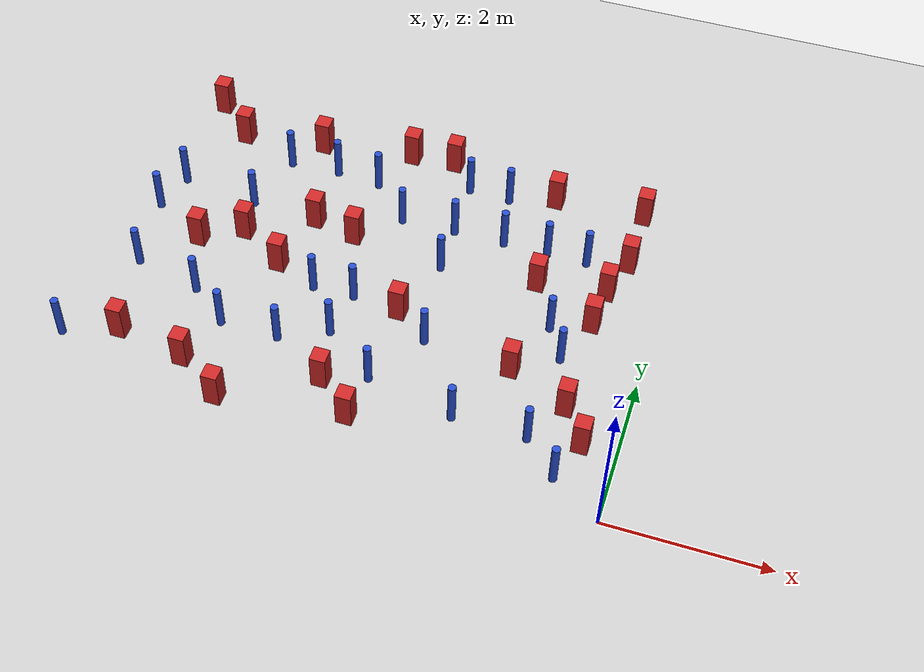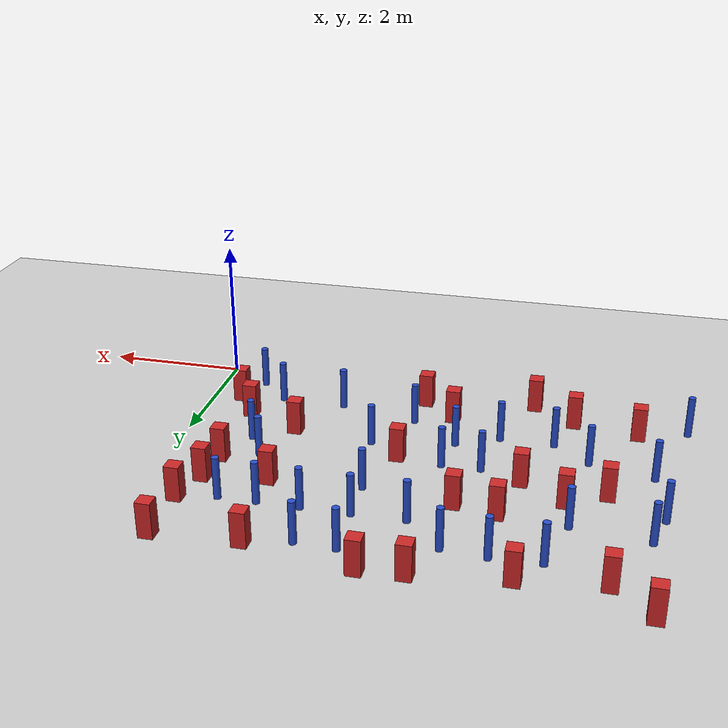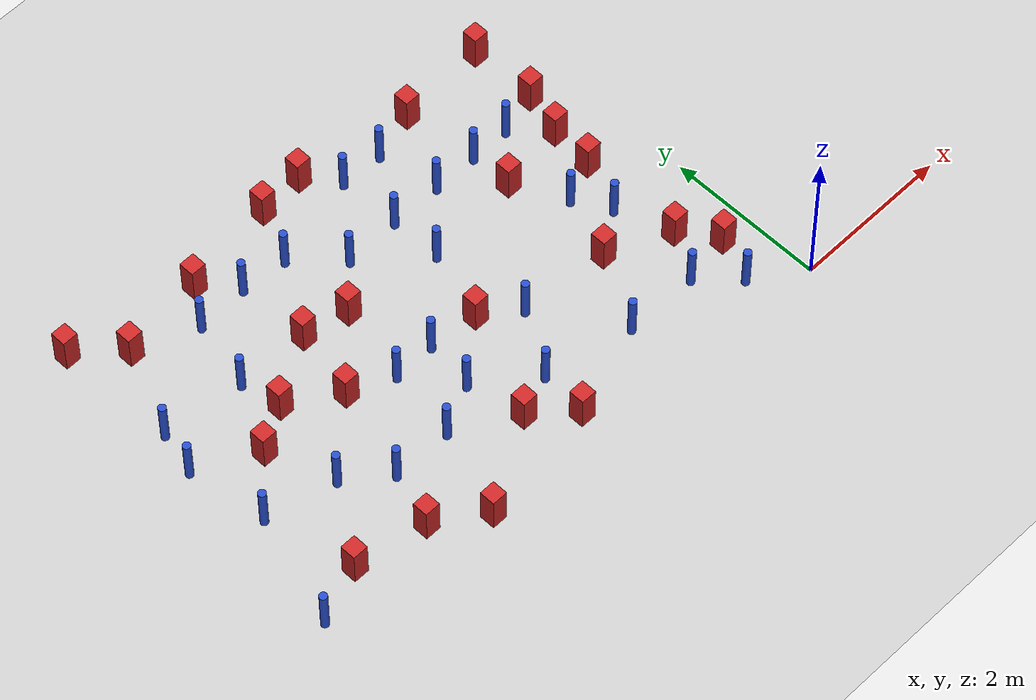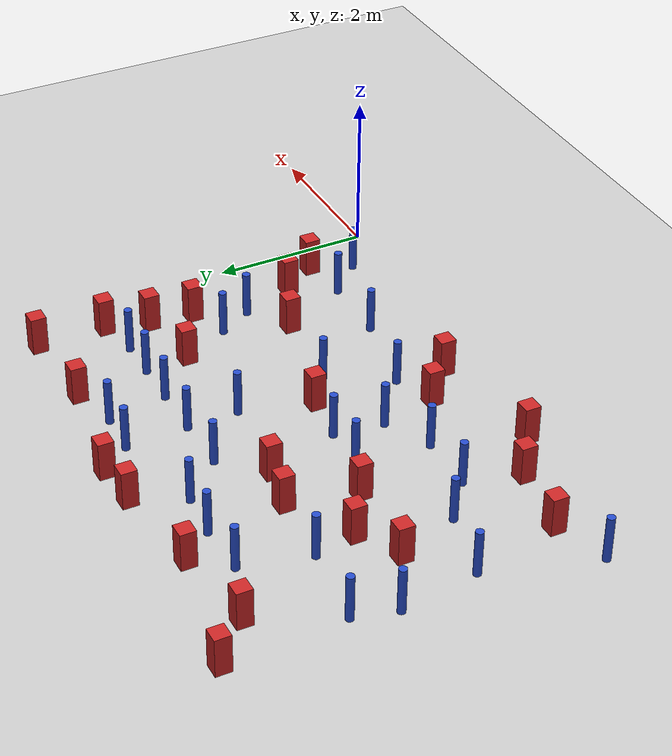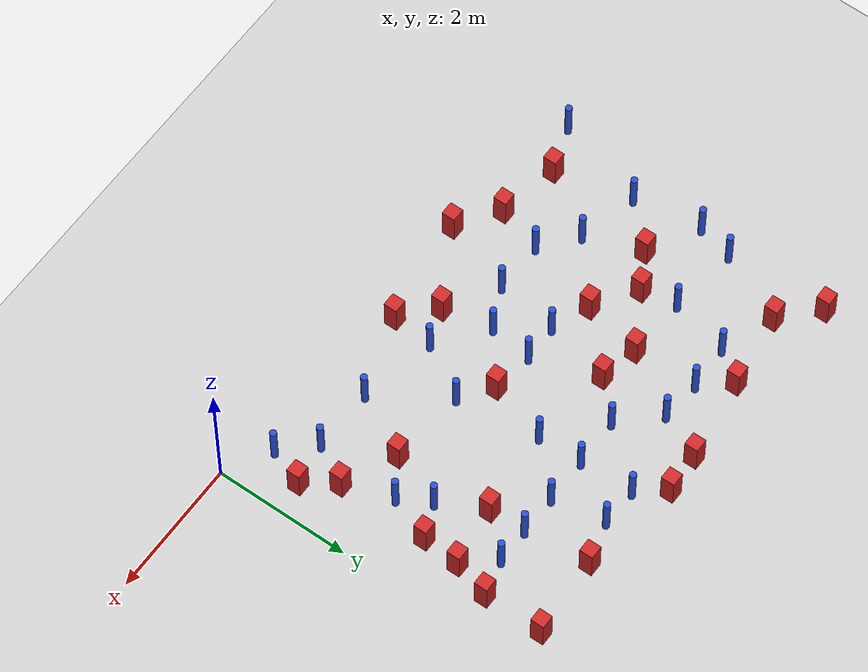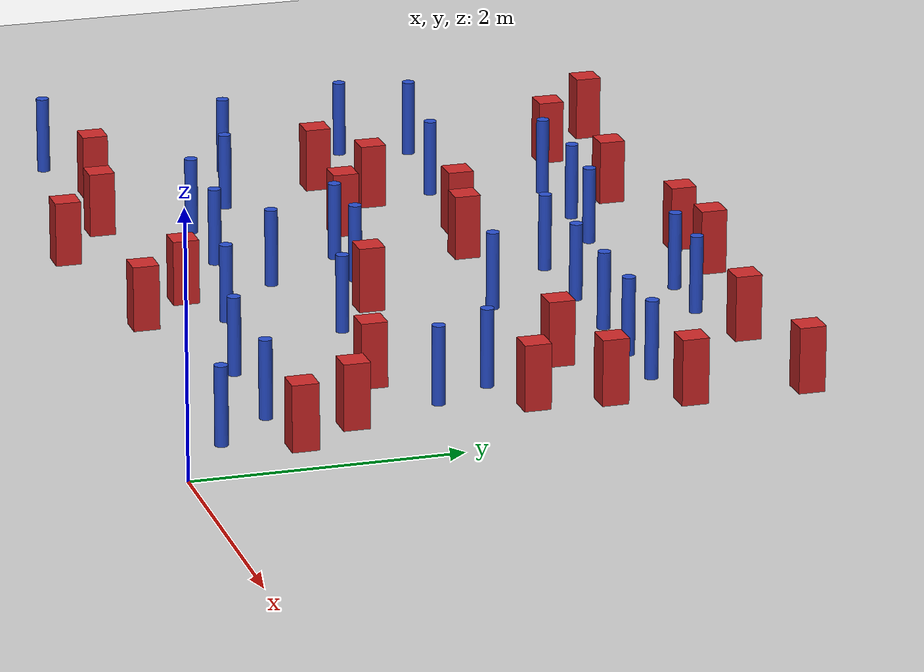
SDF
<sdf version="1.6">
 <world name="default">
  <model name="ground_plane">
   <static>1</static>
   <link name="link">
    <collision name="collision">
     <geometry><plane><normal>0 0 1</normal><size>100 100</size></plane></geometry>
     <surface><friction><ode><mu>100</mu><mu2>50</mu2></ode></friction></surface>
    </collision>
    <visual name="visual">
     <cast_shadows>0</cast_shadows>
     <geometry><plane><normal>0 0 1</normal><size>100 100</size></plane></geometry>
     <material>
      <ambient>1.0 1.0 1.0 1.0</ambient>
      <diffuse>0.8 0.8 0.8 1.0</diffuse>
      <specular>0.01 0.01 0.01 1.000000</specular>
     </material>
    </visual>
   </link>
  </model>
  <model name="square_post_obstacle5">
   <static>true</static>
   <pose>-5.42175333272 2.87260005958 1.91545236811e-07 -7.35059704564e-06 1.12565212e-07 2.39332434364e-05</pose>
   <link name="link">
    <pose>0 0 0.25 0 -0 0</pose>
    <inertial>
     <mass>100</mass>
     <inertia>
      <ixx>0.166667</ixx>
      <ixy>0</ixy>
      <ixz>0</ixz>
      <iyy>0.166667</iyy>
      <iyz>0</iyz>
      <izz>0.166667</izz>
     </inertia>
    </inertial>
    <collision name="collision"><geometry><box><size>.2 .2 .5</size></box></geometry></collision>
    <visual name="visual">
     <geometry><box><size>.2 .2 .5</size></box></geometry>
     <material>
      <script><name>Gazebo/Red</name><uri>file://media/materials/scripts/gazebo.material</uri></script>
     </material>
    </visual>
   </link>
  </model>
  <model name="pole_obstacle12">
   <static>true</static>
   <pose>-4.05530180549 4.23103096723 7.38925637345e-09 -8.47170692796e-08 1.24976764786e-08 -1.74513093032e-07</pose>
   <link name="link">
    <pose>0 0 0.3 0 -0 0</pose>
    <inertial>
     <mass>1</mass>
     <inertia><ixx>0.145833</ixx><ixy>0</ixy><ixz>0</ixz><iyy>0.145833</iyy><iyz>0</iyz><izz>0.125</izz></inertia>
    </inertial>
    <collision name="collision">
     <geometry><cylinder><radius>0.05</radius><length>.6</length></cylinder></geometry>
    </collision>
    <visual name="visual">
     <geometry><cylinder><radius>0.05</radius><length>.6</length></cylinder></geometry>
     <material>
      <script><name>Gazebo/Blue</name><uri>file://media/materials/scripts/gazebo.material</uri></script>
     </material>
    </visual>
   </link>
  </model>
  <model name="pole_obstacle24">
   <static>true</static>
   <pose>-1.06037930642 3.72873706367 7.38925637345e-09 -8.47170692799e-08 1.24976765053e-08 -1.74513093017e-07</pose>
   <link name="link">
    <pose>0 0 0.3 0 -0 0</pose>
    <inertial>
     <mass>1</mass>
     <inertia><ixx>0.145833</ixx><ixy>0</ixy><ixz>0</ixz><iyy>0.145833</iyy><iyz>0</iyz><izz>0.125</izz></inertia>
    </inertial>
    <collision name="collision">
     <geometry><cylinder><radius>0.05</radius><length>.6</length></cylinder></geometry>
    </collision>
    <visual name="visual">
     <geometry><cylinder><radius>0.05</radius><length>.6</length></cylinder></geometry>
     <material>
      <script><name>Gazebo/Blue</name><uri>file://media/materials/scripts/gazebo.material</uri></script>
     </material>
    </visual>
   </link>
  </model>
  <model name="square_post_obstacle22">
   <static>true</static>
   <pose>-0.539328803882 3.85172684881 1.91545236811e-07 -7.35059704564e-06 1.12565212e-07 2.39332434364e-05</pose>
   <link name="link">
    <pose>0 0 0.25 0 -0 0</pose>
    <inertial>
     <mass>100</mass>
     <inertia>
      <ixx>0.166667</ixx>
      <ixy>0</ixy>
      <ixz>0</ixz>
      <iyy>0.166667</iyy>
      <iyz>0</iyz>
      <izz>0.166667</izz>
     </inertia>
    </inertial>
    <collision name="collision"><geometry><box><size>.2 .2 .5</size></box></geometry></collision>
    <visual name="visual">
     <geometry><box><size>.2 .2 .5</size></box></geometry>
     <material>
      <script><name>Gazebo/Red</name><uri>file://media/materials/scripts/gazebo.material</uri></script>
     </material>
    </visual>
   </link>
  </model>
  <model name="pole_obstacle33">
   <static>true</static>
   <pose>-5.1374661536 1.35356909566 7.38925637345e-09 -8.471706928e-08 1.24976765134e-08 -1.74513093015e-07</pose>
   <link name="link">
    <pose>0 0 0.3 0 -0 0</pose>
    <inertial>
     <mass>1</mass>
     <inertia><ixx>0.145833</ixx><ixy>0</ixy><ixz>0</ixz><iyy>0.145833</iyy><iyz>0</iyz><izz>0.125</izz></inertia>
    </inertial>
    <collision name="collision">
     <geometry><cylinder><radius>0.05</radius><length>.6</length></cylinder></geometry>
    </collision>
    <visual name="visual">
     <geometry><cylinder><radius>0.05</radius><length>.6</length></cylinder></geometry>
     <material>
      <script><name>Gazebo/Blue</name><uri>file://media/materials/scripts/gazebo.material</uri></script>
     </material>
    </visual>
   </link>
  </model>
  <model name="pole_obstacle35">
   <static>true</static>
   <pose>-6.5291552342 1.97306248647 7.38925637345e-09 -8.471706928e-08 1.24976765177e-08 -1.74513093012e-07</pose>
   <link name="link">
    <pose>0 0 0.3 0 -0 0</pose>
    <inertial>
     <mass>1</mass>
     <inertia><ixx>0.145833</ixx><ixy>0</ixy><ixz>0</ixz><iyy>0.145833</iyy><iyz>0</iyz><izz>0.125</izz></inertia>
    </inertial>
    <collision name="collision">
     <geometry><cylinder><radius>0.05</radius><length>.6</length></cylinder></geometry>
    </collision>
    <visual name="visual">
     <geometry><cylinder><radius>0.05</radius><length>.6</length></cylinder></geometry>
     <material>
      <script><name>Gazebo/Blue</name><uri>file://media/materials/scripts/gazebo.material</uri></script>
     </material>
    </visual>
   </link>
  </model>
  <model name="square_post_obstacle32">
   <static>true</static>
   <pose>-4.61530927945 3.34257835323 1.91545236811e-07 -7.35059704564e-06 1.12565212e-07 2.39332434364e-05</pose>
   <link name="link">
    <pose>0 0 0.25 0 -0 0</pose>
    <inertial>
     <mass>100</mass>
     <inertia>
      <ixx>0.166667</ixx>
      <ixy>0</ixy>
      <ixz>0</ixz>
      <iyy>0.166667</iyy>
      <iyz>0</iyz>
      <izz>0.166667</izz>
     </inertia>
    </inertial>
    <collision name="collision"><geometry><box><size>.2 .2 .5</size></box></geometry></collision>
    <visual name="visual">
     <geometry><box><size>.2 .2 .5</size></box></geometry>
     <material>
      <script><name>Gazebo/Red</name><uri>file://media/materials/scripts/gazebo.material</uri></script>
     </material>
    </visual>
   </link>
  </model>
  <model name="square_post_obstacle35">
   <static>true</static>
   <pose>-6.26456889306 0.843740738782 1.91545236811e-07 -7.35059704564e-06 1.12565212e-07 2.39332434364e-05</pose>
   <link name="link">
    <pose>0 0 0.25 0 -0 0</pose>
    <inertial>
     <mass>100</mass>
     <inertia>
      <ixx>0.166667</ixx>
      <ixy>0</ixy>
      <ixz>0</ixz>
      <iyy>0.166667</iyy>
      <iyz>0</iyz>
      <izz>0.166667</izz>
     </inertia>
    </inertial>
    <collision name="collision"><geometry><box><size>.2 .2 .5</size></box></geometry></collision>
    <visual name="visual">
     <geometry><box><size>.2 .2 .5</size></box></geometry>
     <material>
      <script><name>Gazebo/Red</name><uri>file://media/materials/scripts/gazebo.material</uri></script>
     </material>
    </visual>
   </link>
  </model>
  <model name="pole_obstacle46">
   <static>true</static>
   <pose>-2.81803144075 3.07217983577 7.38925637345e-09 -8.47170692798e-08 1.24976764939e-08 -1.74513093025e-07</pose>
   <link name="link">
    <pose>0 0 0.3 0 -0 0</pose>
    <inertial>
     <mass>1</mass>
     <inertia><ixx>0.145833</ixx><ixy>0</ixy><ixz>0</ixz><iyy>0.145833</iyy><iyz>0</iyz><izz>0.125</izz></inertia>
    </inertial>
    <collision name="collision">
     <geometry><cylinder><radius>0.05</radius><length>.6</length></cylinder></geometry>
    </collision>
    <visual name="visual">
     <geometry><cylinder><radius>0.05</radius><length>.6</length></cylinder></geometry>
     <material>
      <script><name>Gazebo/Blue</name><uri>file://media/materials/scripts/gazebo.material</uri></script>
     </material>
    </visual>
   </link>
  </model>
  <model name="pole_obstacle50">
   <static>true</static>
   <pose>-1.05528966167 0.841819088689 7.38925637345e-09 -8.47170692799e-08 1.24976765075e-08 -1.74513093017e-07</pose>
   <link name="link">
    <pose>0 0 0.3 0 -0 0</pose>
    <inertial>
     <mass>1</mass>
     <inertia><ixx>0.145833</ixx><ixy>0</ixy><ixz>0</ixz><iyy>0.145833</iyy><iyz>0</iyz><izz>0.125</izz></inertia>
    </inertial>
    <collision name="collision">
     <geometry><cylinder><radius>0.05</radius><length>.6</length></cylinder></geometry>
    </collision>
    <visual name="visual">
     <geometry><cylinder><radius>0.05</radius><length>.6</length></cylinder></geometry>
     <material>
      <script><name>Gazebo/Blue</name><uri>file://media/materials/scripts/gazebo.material</uri></script>
     </material>
    </visual>
   </link>
  </model>
  <model name="pole_obstacle54">
   <static>true</static>
   <pose>-0.983637337728 2.0998711888 7.38925637345e-09 -8.47170692799e-08 1.24976765063e-08 -1.74513093018e-07</pose>
   <link name="link">
    <pose>0 0 0.3 0 -0 0</pose>
    <inertial>
     <mass>1</mass>
     <inertia><ixx>0.145833</ixx><ixy>0</ixy><ixz>0</ixz><iyy>0.145833</iyy><iyz>0</iyz><izz>0.125</izz></inertia>
    </inertial>
    <collision name="collision">
     <geometry><cylinder><radius>0.05</radius><length>.6</length></cylinder></geometry>
    </collision>
    <visual name="visual">
     <geometry><cylinder><radius>0.05</radius><length>.6</length></cylinder></geometry>
     <material>
      <script><name>Gazebo/Blue</name><uri>file://media/materials/scripts/gazebo.material</uri></script>
     </material>
    </visual>
   </link>
  </model>
  <model name="square_post_obstacle42">
   <static>true</static>
   <pose>-6.08776277516 4.54528650982 1.91545236811e-07 -7.35059704564e-06 1.12565212e-07 2.39332434364e-05</pose>
   <link name="link">
    <pose>0 0 0.25 0 -0 0</pose>
    <inertial>
     <mass>100</mass>
     <inertia>
      <ixx>0.166667</ixx>
      <ixy>0</ixy>
      <ixz>0</ixz>
      <iyy>0.166667</iyy>
      <iyz>0</iyz>
      <izz>0.166667</izz>
     </inertia>
    </inertial>
    <collision name="collision"><geometry><box><size>.2 .2 .5</size></box></geometry></collision>
    <visual name="visual">
     <geometry><box><size>.2 .2 .5</size></box></geometry>
     <material>
      <script><name>Gazebo/Red</name><uri>file://media/materials/scripts/gazebo.material</uri></script>
     </material>
    </visual>
   </link>
  </model>
  <model name="pole_obstacle59">
   <static>true</static>
   <pose>-1.98563489081 0.858800353425 7.38925637345e-09 -8.47170692798e-08 1.24976764937e-08 -1.74513093025e-07</pose>
   <link name="link">
    <pose>0 0 0.3 0 -0 0</pose>
    <inertial>
     <mass>1</mass>
     <inertia><ixx>0.145833</ixx><ixy>0</ixy><ixz>0</ixz><iyy>0.145833</iyy><iyz>0</iyz><izz>0.125</izz></inertia>
    </inertial>
    <collision name="collision">
     <geometry><cylinder><radius>0.05</radius><length>.6</length></cylinder></geometry>
    </collision>
    <visual name="visual">
     <geometry><cylinder><radius>0.05</radius><length>.6</length></cylinder></geometry>
     <material>
      <script><name>Gazebo/Blue</name><uri>file://media/materials/scripts/gazebo.material</uri></script>
     </material>
    </visual>
   </link>
  </model>
  <model name="pole_obstacle67">
   <static>true</static>
   <pose>-1.58262333452 3.7253925237 7.38925637345e-09 -8.47170692799e-08 1.24976765053e-08 -1.74513093017e-07</pose>
   <link name="link">
    <pose>0 0 0.3 0 -0 0</pose>
    <inertial>
     <mass>1</mass>
     <inertia><ixx>0.145833</ixx><ixy>0</ixy><ixz>0</ixz><iyy>0.145833</iyy><iyz>0</iyz><izz>0.125</izz></inertia>
    </inertial>
    <collision name="collision">
     <geometry><cylinder><radius>0.05</radius><length>.6</length></cylinder></geometry>
    </collision>
    <visual name="visual">
     <geometry><cylinder><radius>0.05</radius><length>.6</length></cylinder></geometry>
     <material>
      <script><name>Gazebo/Blue</name><uri>file://media/materials/scripts/gazebo.material</uri></script>
     </material>
    </visual>
   </link>
  </model>
  <model name="square_post_obstacle52">
   <static>true</static>
   <pose>-6.60608090939 5.02536226948 1.91545236811e-07 -7.35059704564e-06 1.12565212e-07 2.39332434364e-05</pose>
   <link name="link">
    <pose>0 0 0.25 0 -0 0</pose>
    <inertial>
     <mass>100</mass>
     <inertia>
      <ixx>0.166667</ixx>
      <ixy>0</ixy>
      <ixz>0</ixz>
      <iyy>0.166667</iyy>
      <iyz>0</iyz>
      <izz>0.166667</izz>
     </inertia>
    </inertial>
    <collision name="collision"><geometry><box><size>.2 .2 .5</size></box></geometry></collision>
    <visual name="visual">
     <geometry><box><size>.2 .2 .5</size></box></geometry>
     <material>
      <script><name>Gazebo/Red</name><uri>file://media/materials/scripts/gazebo.material</uri></script>
     </material>
    </visual>
   </link>
  </model>
  <model name="square_post_obstacle64">
   <static>true</static>
   <pose>-0.537220986987 4.73558217508 1.91545236811e-07 -7.35059704564e-06 1.12565212e-07 2.39332434364e-05</pose>
   <link name="link">
    <pose>0 0 0.25 0 -0 0</pose>
    <inertial>
     <mass>100</mass>
     <inertia>
      <ixx>0.166667</ixx>
      <ixy>0</ixy>
      <ixz>0</ixz>
      <iyy>0.166667</iyy>
      <iyz>0</iyz>
      <izz>0.166667</izz>
     </inertia>
    </inertial>
    <collision name="collision"><geometry><box><size>.2 .2 .5</size></box></geometry></collision>
    <visual name="visual">
     <geometry><box><size>.2 .2 .5</size></box></geometry>
     <material>
      <script><name>Gazebo/Red</name><uri>file://media/materials/scripts/gazebo.material</uri></script>
     </material>
    </visual>
   </link>
  </model>
  <model name="pole_obstacle75">
   <static>true</static>
   <pose>-3.71049946147 2.26201659542 7.38925637345e-09 -8.47170692798e-08 1.24976764939e-08 -1.74513093025e-07</pose>
   <link name="link">
    <pose>0 0 0.3 0 -0 0</pose>
    <inertial>
     <mass>1</mass>
     <inertia><ixx>0.145833</ixx><ixy>0</ixy><ixz>0</ixz><iyy>0.145833</iyy><iyz>0</iyz><izz>0.125</izz></inertia>
    </inertial>
    <collision name="collision">
     <geometry><cylinder><radius>0.05</radius><length>.6</length></cylinder></geometry>
    </collision>
    <visual name="visual">
     <geometry><cylinder><radius>0.05</radius><length>.6</length></cylinder></geometry>
     <material>
      <script><name>Gazebo/Blue</name><uri>file://media/materials/scripts/gazebo.material</uri></script>
     </material>
    </visual>
   </link>
  </model>
  <model name="square_post_obstacle67">
   <static>true</static>
   <pose>-1.70710176453 4.66545415365 1.91545236811e-07 -7.35059704564e-06 1.12565212e-07 2.39332434364e-05</pose>
   <link name="link">
    <pose>0 0 0.25 0 -0 0</pose>
    <inertial>
     <mass>100</mass>
     <inertia>
      <ixx>0.166667</ixx>
      <ixy>0</ixy>
      <ixz>0</ixz>
      <iyy>0.166667</iyy>
      <iyz>0</iyz>
      <izz>0.166667</izz>
     </inertia>
    </inertial>
    <collision name="collision"><geometry><box><size>.2 .2 .5</size></box></geometry></collision>
    <visual name="visual">
     <geometry><box><size>.2 .2 .5</size></box></geometry>
     <material>
      <script><name>Gazebo/Red</name><uri>file://media/materials/scripts/gazebo.material</uri></script>
     </material>
    </visual>
   </link>
  </model>
  <model name="pole_obstacle80">
   <static>true</static>
   <pose>-2.85966835534 4.52000592506 7.38925637345e-09 -8.47170692798e-08 1.24976765033e-08 -1.74513093019e-07</pose>
   <link name="link">
    <pose>0 0 0.3 0 -0 0</pose>
    <inertial>
     <mass>1</mass>
     <inertia><ixx>0.145833</ixx><ixy>0</ixy><ixz>0</ixz><iyy>0.145833</iyy><iyz>0</iyz><izz>0.125</izz></inertia>
    </inertial>
    <collision name="collision">
     <geometry><cylinder><radius>0.05</radius><length>.6</length></cylinder></geometry>
    </collision>
    <visual name="visual">
     <geometry><cylinder><radius>0.05</radius><length>.6</length></cylinder></geometry>
     <material>
      <script><name>Gazebo/Blue</name><uri>file://media/materials/scripts/gazebo.material</uri></script>
     </material>
    </visual>
   </link>
  </model>
  <model name="square_post_obstacle71">
   <static>true</static>
   <pose>-5.35333143115 0.676254134552 1.91545236811e-07 -7.35059704564e-06 1.12565212e-07 2.39332434364e-05</pose>
   <link name="link">
    <pose>0 0 0.25 0 -0 0</pose>
    <inertial>
     <mass>100</mass>
     <inertia>
      <ixx>0.166667</ixx>
      <ixy>0</ixy>
      <ixz>0</ixz>
      <iyy>0.166667</iyy>
      <iyz>0</iyz>
      <izz>0.166667</izz>
     </inertia>
    </inertial>
    <collision name="collision"><geometry><box><size>.2 .2 .5</size></box></geometry></collision>
    <visual name="visual">
     <geometry><box><size>.2 .2 .5</size></box></geometry>
     <material>
      <script><name>Gazebo/Red</name><uri>file://media/materials/scripts/gazebo.material</uri></script>
     </material>
    </visual>
   </link>
  </model>
  <model name="square_post_obstacle77">
   <static>true</static>
   <pose>-1.57000847653 3.18143207507 1.91545236811e-07 -7.35059704564e-06 1.12565212e-07 2.39332434364e-05</pose>
   <link name="link">
    <pose>0 0 0.25 0 -0 0</pose>
    <inertial>
     <mass>100</mass>
     <inertia>
      <ixx>0.166667</ixx>
      <ixy>0</ixy>
      <ixz>0</ixz>
      <iyy>0.166667</iyy>
      <iyz>0</iyz>
      <izz>0.166667</izz>
     </inertia>
    </inertial>
    <collision name="collision"><geometry><box><size>.2 .2 .5</size></box></geometry></collision>
    <visual name="visual">
     <geometry><box><size>.2 .2 .5</size></box></geometry>
     <material>
      <script><name>Gazebo/Red</name><uri>file://media/materials/scripts/gazebo.material</uri></script>
     </material>
    </visual>
   </link>
  </model>
  <model name="square_post_obstacle86">
   <static>true</static>
   <pose>-0.694765136282 3.30392372605 1.91545236811e-07 -7.35059704564e-06 1.12565212e-07 2.39332434364e-05</pose>
   <link name="link">
    <pose>0 0 0.25 0 -0 0</pose>
    <inertial>
     <mass>100</mass>
     <inertia>
      <ixx>0.166667</ixx>
      <ixy>0</ixy>
      <ixz>0</ixz>
      <iyy>0.166667</iyy>
      <iyz>0</iyz>
      <izz>0.166667</izz>
     </inertia>
    </inertial>
    <collision name="collision"><geometry><box><size>.2 .2 .5</size></box></geometry></collision>
    <visual name="visual">
     <geometry><box><size>.2 .2 .5</size></box></geometry>
     <material>
      <script><name>Gazebo/Red</name><uri>file://media/materials/scripts/gazebo.material</uri></script>
     </material>
    </visual>
   </link>
  </model>
  <model name="pole_obstacle99">
   <static>true</static>
   <pose>-4.64732674633 4.28201618926 7.38925637345e-09 -8.47170692796e-08 1.24976764786e-08 -1.74513093032e-07</pose>
   <link name="link">
    <pose>0 0 0.3 0 -0 0</pose>
    <inertial>
     <mass>1</mass>
     <inertia><ixx>0.145833</ixx><ixy>0</ixy><ixz>0</ixz><iyy>0.145833</iyy><iyz>0</iyz><izz>0.125</izz></inertia>
    </inertial>
    <collision name="collision">
     <geometry><cylinder><radius>0.05</radius><length>.6</length></cylinder></geometry>
    </collision>
    <visual name="visual">
     <geometry><cylinder><radius>0.05</radius><length>.6</length></cylinder></geometry>
     <material>
      <script><name>Gazebo/Blue</name><uri>file://media/materials/scripts/gazebo.material</uri></script>
     </material>
    </visual>
   </link>
  </model>
  <model name="square_post_obstacle93">
   <static>true</static>
   <pose>-4.04097750296 3.22292519464 1.91545236811e-07 -7.35059704564e-06 1.12565212e-07 2.39332434364e-05</pose>
   <link name="link">
    <pose>0 0 0.25 0 -0 0</pose>
    <inertial>
     <mass>100</mass>
     <inertia>
      <ixx>0.166667</ixx>
      <ixy>0</ixy>
      <ixz>0</ixz>
      <iyy>0.166667</iyy>
      <iyz>0</iyz>
      <izz>0.166667</izz>
     </inertia>
    </inertial>
    <collision name="collision"><geometry><box><size>.2 .2 .5</size></box></geometry></collision>
    <visual name="visual">
     <geometry><box><size>.2 .2 .5</size></box></geometry>
     <material>
      <script><name>Gazebo/Red</name><uri>file://media/materials/scripts/gazebo.material</uri></script>
     </material>
    </visual>
   </link>
  </model>
  <model name="pole_obstacle102">
   <static>true</static>
   <pose>-2.64574749173 1.85881438576 7.38925637345e-09 -8.471706928e-08 1.24976765152e-08 -1.74513093012e-07</pose>
   <link name="link">
    <pose>0 0 0.3 0 -0 0</pose>
    <inertial>
     <mass>1</mass>
     <inertia><ixx>0.145833</ixx><ixy>0</ixy><ixz>0</ixz><iyy>0.145833</iyy><iyz>0</iyz><izz>0.125</izz></inertia>
    </inertial>
    <collision name="collision">
     <geometry><cylinder><radius>0.05</radius><length>.6</length></cylinder></geometry>
    </collision>
    <visual name="visual">
     <geometry><cylinder><radius>0.05</radius><length>.6</length></cylinder></geometry>
     <material>
      <script><name>Gazebo/Blue</name><uri>file://media/materials/scripts/gazebo.material</uri></script>
     </material>
    </visual>
   </link>
  </model>
  <model name="pole_obstacle104">
   <static>true</static>
   <pose>-4.24921186039 2.25268982161 7.38925637345e-09 -8.47170692798e-08 1.24976764937e-08 -1.74513093023e-07</pose>
   <link name="link">
    <pose>0 0 0.3 0 -0 0</pose>
    <inertial>
     <mass>1</mass>
     <inertia><ixx>0.145833</ixx><ixy>0</ixy><ixz>0</ixz><iyy>0.145833</iyy><iyz>0</iyz><izz>0.125</izz></inertia>
    </inertial>
    <collision name="collision">
     <geometry><cylinder><radius>0.05</radius><length>.6</length></cylinder></geometry>
    </collision>
    <visual name="visual">
     <geometry><cylinder><radius>0.05</radius><length>.6</length></cylinder></geometry>
     <material>
      <script><name>Gazebo/Blue</name><uri>file://media/materials/scripts/gazebo.material</uri></script>
     </material>
    </visual>
   </link>
  </model>
  <model name="pole_obstacle105">
   <static>true</static>
   <pose>-3.10682272723 1.09573276067 7.38925637345e-09 -8.47170692796e-08 1.24976764713e-08 -1.74513093037e-07</pose>
   <link name="link">
    <pose>0 0 0.3 0 -0 0</pose>
    <inertial>
     <mass>1</mass>
     <inertia><ixx>0.145833</ixx><ixy>0</ixy><ixz>0</ixz><iyy>0.145833</iyy><iyz>0</iyz><izz>0.125</izz></inertia>
    </inertial>
    <collision name="collision">
     <geometry><cylinder><radius>0.05</radius><length>.6</length></cylinder></geometry>
    </collision>
    <visual name="visual">
     <geometry><cylinder><radius>0.05</radius><length>.6</length></cylinder></geometry>
     <material>
      <script><name>Gazebo/Blue</name><uri>file://media/materials/scripts/gazebo.material</uri></script>
     </material>
    </visual>
   </link>
  </model>
  <model name="square_post_obstacle111">
   <static>true</static>
   <pose>-4.75214658575 0.264298087477 1.91545236811e-07 -7.35059704564e-06 1.12565212e-07 2.39332434364e-05</pose>
   <link name="link">
    <pose>0 0 0.25 0 -0 0</pose>
    <inertial>
     <mass>100</mass>
     <inertia>
      <ixx>0.166667</ixx>
      <ixy>0</ixy>
      <ixz>0</ixz>
      <iyy>0.166667</iyy>
      <iyz>0</iyz>
      <izz>0.166667</izz>
     </inertia>
    </inertial>
    <collision name="collision"><geometry><box><size>.2 .2 .5</size></box></geometry></collision>
    <visual name="visual">
     <geometry><box><size>.2 .2 .5</size></box></geometry>
     <material>
      <script><name>Gazebo/Red</name><uri>file://media/materials/scripts/gazebo.material</uri></script>
     </material>
    </visual>
   </link>
  </model>
  <model name="pole_obstacle120">
   <static>true</static>
   <pose>-5.6448144097 1.75679611795 7.38925637345e-09 -8.471706928e-08 1.24976765134e-08 -1.74513093015e-07</pose>
   <link name="link">
    <pose>0 0 0.3 0 -0 0</pose>
    <inertial>
     <mass>1</mass>
     <inertia><ixx>0.145833</ixx><ixy>0</ixy><ixz>0</ixz><iyy>0.145833</iyy><iyz>0</iyz><izz>0.125</izz></inertia>
    </inertial>
    <collision name="collision">
     <geometry><cylinder><radius>0.05</radius><length>.6</length></cylinder></geometry>
    </collision>
    <visual name="visual">
     <geometry><cylinder><radius>0.05</radius><length>.6</length></cylinder></geometry>
     <material>
      <script><name>Gazebo/Blue</name><uri>file://media/materials/scripts/gazebo.material</uri></script>
     </material>
    </visual>
   </link>
  </model>
  <model name="pole_obstacle126">
   <static>true</static>
   <pose>-1.2302649875 2.53843975416 7.38925637345e-09 -8.47170692799e-08 1.24976765053e-08 -1.74513093017e-07</pose>
   <link name="link">
    <pose>0 0 0.3 0 -0 0</pose>
    <inertial>
     <mass>1</mass>
     <inertia><ixx>0.145833</ixx><ixy>0</ixy><ixz>0</ixz><iyy>0.145833</iyy><iyz>0</iyz><izz>0.125</izz></inertia>
    </inertial>
    <collision name="collision">
     <geometry><cylinder><radius>0.05</radius><length>.6</length></cylinder></geometry>
    </collision>
    <visual name="visual">
     <geometry><cylinder><radius>0.05</radius><length>.6</length></cylinder></geometry>
     <material>
      <script><name>Gazebo/Blue</name><uri>file://media/materials/scripts/gazebo.material</uri></script>
     </material>
    </visual>
   </link>
  </model>
  <model name="pole_obstacle129">
   <static>true</static>
   <pose>-5.5177605363 3.39367520197 7.38925637345e-09 -8.47170692798e-08 1.24976764937e-08 -1.74513093023e-07</pose>
   <link name="link">
    <pose>0 0 0.3 0 -0 0</pose>
    <inertial>
     <mass>1</mass>
     <inertia><ixx>0.145833</ixx><ixy>0</ixy><ixz>0</ixz><iyy>0.145833</iyy><iyz>0</iyz><izz>0.125</izz></inertia>
    </inertial>
    <collision name="collision">
     <geometry><cylinder><radius>0.05</radius><length>.6</length></cylinder></geometry>
    </collision>
    <visual name="visual">
     <geometry><cylinder><radius>0.05</radius><length>.6</length></cylinder></geometry>
     <material>
      <script><name>Gazebo/Blue</name><uri>file://media/materials/scripts/gazebo.material</uri></script>
     </material>
    </visual>
   </link>
  </model>
  <model name="pole_obstacle132">
   <static>true</static>
   <pose>-6.94714957129 0.603696776406 7.38925637345e-09 -8.47170692799e-08 1.24976765038e-08 -1.74513093018e-07</pose>
   <link name="link">
    <pose>0 0 0.3 0 -0 0</pose>
    <inertial>
     <mass>1</mass>
     <inertia><ixx>0.145833</ixx><ixy>0</ixy><ixz>0</ixz><iyy>0.145833</iyy><iyz>0</iyz><izz>0.125</izz></inertia>
    </inertial>
    <collision name="collision">
     <geometry><cylinder><radius>0.05</radius><length>.6</length></cylinder></geometry>
    </collision>
    <visual name="visual">
     <geometry><cylinder><radius>0.05</radius><length>.6</length></cylinder></geometry>
     <material>
      <script><name>Gazebo/Blue</name><uri>file://media/materials/scripts/gazebo.material</uri></script>
     </material>
    </visual>
   </link>
  </model>
  <model name="pole_obstacle144">
   <static>true</static>
   <pose>-4.38282096594 1.34288479018 7.38925637345e-09 -8.471706928e-08 1.24976765134e-08 -1.74513093015e-07</pose>
   <link name="link">
    <pose>0 0 0.3 0 -0 0</pose>
    <inertial>
     <mass>1</mass>
     <inertia><ixx>0.145833</ixx><ixy>0</ixy><ixz>0</ixz><iyy>0.145833</iyy><iyz>0</iyz><izz>0.125</izz></inertia>
    </inertial>
    <collision name="collision">
     <geometry><cylinder><radius>0.05</radius><length>.6</length></cylinder></geometry>
    </collision>
    <visual name="visual">
     <geometry><cylinder><radius>0.05</radius><length>.6</length></cylinder></geometry>
     <material>
      <script><name>Gazebo/Blue</name><uri>file://media/materials/scripts/gazebo.material</uri></script>
     </material>
    </visual>
   </link>
  </model>
  <model name="square_post_obstacle141">
   <static>true</static>
   <pose>-1.51378958972 1.74943251073 1.91545236811e-07 -7.35059704564e-06 1.12565212e-07 2.39332434364e-05</pose>
   <link name="link">
    <pose>0 0 0.25 0 -0 0</pose>
    <inertial>
     <mass>100</mass>
     <inertia>
      <ixx>0.166667</ixx>
      <ixy>0</ixy>
      <ixz>0</ixz>
      <iyy>0.166667</iyy>
      <iyz>0</iyz>
      <izz>0.166667</izz>
     </inertia>
    </inertial>
    <collision name="collision"><geometry><box><size>.2 .2 .5</size></box></geometry></collision>
    <visual name="visual">
     <geometry><box><size>.2 .2 .5</size></box></geometry>
     <material>
      <script><name>Gazebo/Red</name><uri>file://media/materials/scripts/gazebo.material</uri></script>
     </material>
    </visual>
   </link>
  </model>
  <model name="square_post_obstacle143">
   <static>true</static>
   <pose>-5.94690891283 2.57233734728 1.91545236811e-07 -7.35059704564e-06 1.12565212e-07 2.39332434364e-05</pose>
   <link name="link">
    <pose>0 0 0.25 0 -0 0</pose>
    <inertial>
     <mass>100</mass>
     <inertia>
      <ixx>0.166667</ixx>
      <ixy>0</ixy>
      <ixz>0</ixz>
      <iyy>0.166667</iyy>
      <iyz>0</iyz>
      <izz>0.166667</izz>
     </inertia>
    </inertial>
    <collision name="collision"><geometry><box><size>.2 .2 .5</size></box></geometry></collision>
    <visual name="visual">
     <geometry><box><size>.2 .2 .5</size></box></geometry>
     <material>
      <script><name>Gazebo/Red</name><uri>file://media/materials/scripts/gazebo.material</uri></script>
     </material>
    </visual>
   </link>
  </model>
  <model name="pole_obstacle154">
   <static>true</static>
   <pose>-5.30648021387 4.25460271691 7.38925637345e-09 -8.47170692796e-08 1.24976764786e-08 -1.74513093032e-07</pose>
   <link name="link">
    <pose>0 0 0.3 0 -0 0</pose>
    <inertial>
     <mass>1</mass>
     <inertia><ixx>0.145833</ixx><ixy>0</ixy><ixz>0</ixz><iyy>0.145833</iyy><iyz>0</iyz><izz>0.125</izz></inertia>
    </inertial>
    <collision name="collision">
     <geometry><cylinder><radius>0.05</radius><length>.6</length></cylinder></geometry>
    </collision>
    <visual name="visual">
     <geometry><cylinder><radius>0.05</radius><length>.6</length></cylinder></geometry>
     <material>
      <script><name>Gazebo/Blue</name><uri>file://media/materials/scripts/gazebo.material</uri></script>
     </material>
    </visual>
   </link>
  </model>
  <model name="pole_obstacle157">
   <static>true</static>
   <pose>-2.30969532852 4.49997717978 7.38925637345e-09 -8.47170692798e-08 1.24976765033e-08 -1.74513093019e-07</pose>
   <link name="link">
    <pose>0 0 0.3 0 -0 0</pose>
    <inertial>
     <mass>1</mass>
     <inertia><ixx>0.145833</ixx><ixy>0</ixy><ixz>0</ixz><iyy>0.145833</iyy><iyz>0</iyz><izz>0.125</izz></inertia>
    </inertial>
    <collision name="collision">
     <geometry><cylinder><radius>0.05</radius><length>.6</length></cylinder></geometry>
    </collision>
    <visual name="visual">
     <geometry><cylinder><radius>0.05</radius><length>.6</length></cylinder></geometry>
     <material>
      <script><name>Gazebo/Blue</name><uri>file://media/materials/scripts/gazebo.material</uri></script>
     </material>
    </visual>
   </link>
  </model>
  <model name="pole_obstacle158">
   <static>true</static>
   <pose>-3.54654950496 3.71277602894 7.38925637345e-09 -8.471706928e-08 1.24976765098e-08 -1.74513093016e-07</pose>
   <link name="link">
    <pose>0 0 0.3 0 -0 0</pose>
    <inertial>
     <mass>1</mass>
     <inertia><ixx>0.145833</ixx><ixy>0</ixy><ixz>0</ixz><iyy>0.145833</iyy><iyz>0</iyz><izz>0.125</izz></inertia>
    </inertial>
    <collision name="collision">
     <geometry><cylinder><radius>0.05</radius><length>.6</length></cylinder></geometry>
    </collision>
    <visual name="visual">
     <geometry><cylinder><radius>0.05</radius><length>.6</length></cylinder></geometry>
     <material>
      <script><name>Gazebo/Blue</name><uri>file://media/materials/scripts/gazebo.material</uri></script>
     </material>
    </visual>
   </link>
  </model>
  <model name="square_post_obstacle155">
   <static>true</static>
   <pose>-3.18304559341 4.90970985776 1.91545236811e-07 -7.35059704564e-06 1.12565212e-07 2.39332434364e-05</pose>
   <link name="link">
    <pose>0 0 0.25 0 -0 0</pose>
    <inertial>
     <mass>100</mass>
     <inertia>
      <ixx>0.166667</ixx>
      <ixy>0</ixy>
      <ixz>0</ixz>
      <iyy>0.166667</iyy>
      <iyz>0</iyz>
      <izz>0.166667</izz>
     </inertia>
    </inertial>
    <collision name="collision"><geometry><box><size>.2 .2 .5</size></box></geometry></collision>
    <visual name="visual">
     <geometry><box><size>.2 .2 .5</size></box></geometry>
     <material>
      <script><name>Gazebo/Red</name><uri>file://media/materials/scripts/gazebo.material</uri></script>
     </material>
    </visual>
   </link>
  </model>
  <model name="square_post_obstacle159">
   <static>true</static>
   <pose>-3.77256823493 4.86996086852 1.91545236811e-07 -7.35059704564e-06 1.12565212e-07 2.39332434364e-05</pose>
   <link name="link">
    <pose>0 0 0.25 0 -0 0</pose>
    <inertial>
     <mass>100</mass>
     <inertia>
      <ixx>0.166667</ixx>
      <ixy>0</ixy>
      <ixz>0</ixz>
      <iyy>0.166667</iyy>
      <iyz>0</iyz>
      <izz>0.166667</izz>
     </inertia>
    </inertial>
    <collision name="collision"><geometry><box><size>.2 .2 .5</size></box></geometry></collision>
    <visual name="visual">
     <geometry><box><size>.2 .2 .5</size></box></geometry>
     <material>
      <script><name>Gazebo/Red</name><uri>file://media/materials/scripts/gazebo.material</uri></script>
     </material>
    </visual>
   </link>
  </model>
  <model name="pole_obstacle167">
   <static>true</static>
   <pose>-6.68628767916 2.9799269143 7.38925637345e-09 -8.47170692798e-08 1.24976764937e-08 -1.74513093023e-07</pose>
   <link name="link">
    <pose>0 0 0.3 0 -0 0</pose>
    <inertial>
     <mass>1</mass>
     <inertia><ixx>0.145833</ixx><ixy>0</ixy><ixz>0</ixz><iyy>0.145833</iyy><iyz>0</iyz><izz>0.125</izz></inertia>
    </inertial>
    <collision name="collision">
     <geometry><cylinder><radius>0.05</radius><length>.6</length></cylinder></geometry>
    </collision>
    <visual name="visual">
     <geometry><cylinder><radius>0.05</radius><length>.6</length></cylinder></geometry>
     <material>
      <script><name>Gazebo/Blue</name><uri>file://media/materials/scripts/gazebo.material</uri></script>
     </material>
    </visual>
   </link>
  </model>
  <model name="pole_obstacle178">
   <static>true</static>
   <pose>-2.16542048691 3.72907912049 7.38925637345e-09 -8.47170692798e-08 1.24976764939e-08 -1.74513093025e-07</pose>
   <link name="link">
    <pose>0 0 0.3 0 -0 0</pose>
    <inertial>
     <mass>1</mass>
     <inertia><ixx>0.145833</ixx><ixy>0</ixy><ixz>0</ixz><iyy>0.145833</iyy><iyz>0</iyz><izz>0.125</izz></inertia>
    </inertial>
    <collision name="collision">
     <geometry><cylinder><radius>0.05</radius><length>.6</length></cylinder></geometry>
    </collision>
    <visual name="visual">
     <geometry><cylinder><radius>0.05</radius><length>.6</length></cylinder></geometry>
     <material>
      <script><name>Gazebo/Blue</name><uri>file://media/materials/scripts/gazebo.material</uri></script>
     </material>
    </visual>
   </link>
  </model>
  <model name="square_post_obstacle181">
   <static>true</static>
   <pose>-4.80697569154 2.47461331015 1.91545236811e-07 -7.35059704564e-06 1.12565212e-07 2.39332434364e-05</pose>
   <link name="link">
    <pose>0 0 0.25 0 -0 0</pose>
    <inertial>
     <mass>100</mass>
     <inertia>
      <ixx>0.166667</ixx>
      <ixy>0</ixy>
      <ixz>0</ixz>
      <iyy>0.166667</iyy>
      <iyz>0</iyz>
      <izz>0.166667</izz>
     </inertia>
    </inertial>
    <collision name="collision"><geometry><box><size>.2 .2 .5</size></box></geometry></collision>
    <visual name="visual">
     <geometry><box><size>.2 .2 .5</size></box></geometry>
     <material>
      <script><name>Gazebo/Red</name><uri>file://media/materials/scripts/gazebo.material</uri></script>
     </material>
    </visual>
   </link>
  </model>
  <model name="square_post_obstacle186">
   <static>true</static>
   <pose>-0.747035271167 2.73925790947 1.91545236811e-07 -7.35059704564e-06 1.12565212e-07 2.39332434364e-05</pose>
   <link name="link">
    <pose>0 0 0.25 0 -0 0</pose>
    <inertial>
     <mass>100</mass>
     <inertia>
      <ixx>0.166667</ixx>
      <ixy>0</ixy>
      <ixz>0</ixz>
      <iyy>0.166667</iyy>
      <iyz>0</iyz>
      <izz>0.166667</izz>
     </inertia>
    </inertial>
    <collision name="collision"><geometry><box><size>.2 .2 .5</size></box></geometry></collision>
    <visual name="visual">
     <geometry><box><size>.2 .2 .5</size></box></geometry>
     <material>
      <script><name>Gazebo/Red</name><uri>file://media/materials/scripts/gazebo.material</uri></script>
     </material>
    </visual>
   </link>
  </model>
  <model name="pole_obstacle186">
   <static>true</static>
   <pose>-3.7916973068 1.62814771099 7.38925637345e-09 -8.47170692796e-08 1.24976764713e-08 -1.74513093037e-07</pose>
   <link name="link">
    <pose>0 0 0.3 0 -0 0</pose>
    <inertial>
     <mass>1</mass>
     <inertia><ixx>0.145833</ixx><ixy>0</ixy><ixz>0</ixz><iyy>0.145833</iyy><iyz>0</iyz><izz>0.125</izz></inertia>
    </inertial>
    <collision name="collision">
     <geometry><cylinder><radius>0.05</radius><length>.6</length></cylinder></geometry>
    </collision>
    <visual name="visual">
     <geometry><cylinder><radius>0.05</radius><length>.6</length></cylinder></geometry>
     <material>
      <script><name>Gazebo/Blue</name><uri>file://media/materials/scripts/gazebo.material</uri></script>
     </material>
    </visual>
   </link>
  </model>
  <model name="square_post_obstacle191">
   <static>true</static>
   <pose>-3.09189372579 2.18935542894 1.91545236811e-07 -7.35059704564e-06 1.12565212e-07 2.39332434364e-05</pose>
   <link name="link">
    <pose>0 0 0.25 0 -0 0</pose>
    <inertial>
     <mass>100</mass>
     <inertia>
      <ixx>0.166667</ixx>
      <ixy>0</ixy>
      <ixz>0</ixz>
      <iyy>0.166667</iyy>
      <iyz>0</iyz>
      <izz>0.166667</izz>
     </inertia>
    </inertial>
    <collision name="collision"><geometry><box><size>.2 .2 .5</size></box></geometry></collision>
    <visual name="visual">
     <geometry><box><size>.2 .2 .5</size></box></geometry>
     <material>
      <script><name>Gazebo/Red</name><uri>file://media/materials/scripts/gazebo.material</uri></script>
     </material>
    </visual>
   </link>
  </model>
  <model name="pole_obstacle188">
   <static>true</static>
   <pose>-2.83264052756 3.72901179468 7.38925637345e-09 -8.47170692798e-08 1.24976764939e-08 -1.74513093025e-07</pose>
   <link name="link">
    <pose>0 0 0.3 0 -0 0</pose>
    <inertial>
     <mass>1</mass>
     <inertia><ixx>0.145833</ixx><ixy>0</ixy><ixz>0</ixz><iyy>0.145833</iyy><iyz>0</iyz><izz>0.125</izz></inertia>
    </inertial>
    <collision name="collision">
     <geometry><cylinder><radius>0.05</radius><length>.6</length></cylinder></geometry>
    </collision>
    <visual name="visual">
     <geometry><cylinder><radius>0.05</radius><length>.6</length></cylinder></geometry>
     <material>
      <script><name>Gazebo/Blue</name><uri>file://media/materials/scripts/gazebo.material</uri></script>
     </material>
    </visual>
   </link>
  </model>
  <model name="square_post_obstacle203">
   <static>true</static>
   <pose>-3.16589489576 0.477281190645 1.91545236811e-07 -7.35059704564e-06 1.12565212e-07 2.39332434364e-05</pose>
   <link name="link">
    <pose>0 0 0.25 0 -0 0</pose>
    <inertial>
     <mass>100</mass>
     <inertia>
      <ixx>0.166667</ixx>
      <ixy>0</ixy>
      <ixz>0</ixz>
      <iyy>0.166667</iyy>
      <iyz>0</iyz>
      <izz>0.166667</izz>
     </inertia>
    </inertial>
    <collision name="collision"><geometry><box><size>.2 .2 .5</size></box></geometry></collision>
    <visual name="visual">
     <geometry><box><size>.2 .2 .5</size></box></geometry>
     <material>
      <script><name>Gazebo/Red</name><uri>file://media/materials/scripts/gazebo.material</uri></script>
     </material>
    </visual>
   </link>
  </model>
  <model name="pole_obstacle193">
   <static>true</static>
   <pose>-6.54514292453 3.51730895795 7.38925637345e-09 -8.47170692798e-08 1.24976764937e-08 -1.74513093023e-07</pose>
   <link name="link">
    <pose>0 0 0.3 0 -0 0</pose>
    <inertial>
     <mass>1</mass>
     <inertia><ixx>0.145833</ixx><ixy>0</ixy><ixz>0</ixz><iyy>0.145833</iyy><iyz>0</iyz><izz>0.125</izz></inertia>
    </inertial>
    <collision name="collision">
     <geometry><cylinder><radius>0.05</radius><length>.6</length></cylinder></geometry>
    </collision>
    <visual name="visual">
     <geometry><cylinder><radius>0.05</radius><length>.6</length></cylinder></geometry>
     <material>
      <script><name>Gazebo/Blue</name><uri>file://media/materials/scripts/gazebo.material</uri></script>
     </material>
    </visual>
   </link>
  </model>
  <model name="pole_obstacle201">
   <static>true</static>
   <pose>-0.627758515962 0.404376903583 7.38925637345e-09 -8.471706928e-08 1.24976765108e-08 -1.74513093015e-07</pose>
   <link name="link">
    <pose>0 0 0.3 0 -0 0</pose>
    <inertial>
     <mass>1</mass>
     <inertia><ixx>0.145833</ixx><ixy>0</ixy><ixz>0</ixz><iyy>0.145833</iyy><iyz>0</iyz><izz>0.125</izz></inertia>
    </inertial>
    <collision name="collision">
     <geometry><cylinder><radius>0.05</radius><length>.6</length></cylinder></geometry>
    </collision>
    <visual name="visual">
     <geometry><cylinder><radius>0.05</radius><length>.6</length></cylinder></geometry>
     <material>
      <script><name>Gazebo/Blue</name><uri>file://media/materials/scripts/gazebo.material</uri></script>
     </material>
    </visual>
   </link>
  </model>
  <model name="square_post_obstacle208">
   <static>true</static>
   <pose>-0.739358914075 1.39727617522 1.91545236811e-07 -7.35059704564e-06 1.12565212e-07 2.39332434364e-05</pose>
   <link name="link">
    <pose>0 0 0.25 0 -0 0</pose>
    <inertial>
     <mass>100</mass>
     <inertia>
      <ixx>0.166667</ixx>
      <ixy>0</ixy>
      <ixz>0</ixz>
      <iyy>0.166667</iyy>
      <iyz>0</iyz>
      <izz>0.166667</izz>
     </inertia>
    </inertial>
    <collision name="collision"><geometry><box><size>.2 .2 .5</size></box></geometry></collision>
    <visual name="visual">
     <geometry><box><size>.2 .2 .5</size></box></geometry>
     <material>
      <script><name>Gazebo/Red</name><uri>file://media/materials/scripts/gazebo.material</uri></script>
     </material>
    </visual>
   </link>
  </model>
  <model name="square_post_obstacle209">
   <static>true</static>
   <pose>-0.434775630044 0.937558375012 1.91545236811e-07 -7.35059704564e-06 1.12565212e-07 2.39332434364e-05</pose>
   <link name="link">
    <pose>0 0 0.25 0 -0 0</pose>
    <inertial>
     <mass>100</mass>
     <inertia>
      <ixx>0.166667</ixx>
      <ixy>0</ixy>
      <ixz>0</ixz>
      <iyy>0.166667</iyy>
      <iyz>0</iyz>
      <izz>0.166667</izz>
     </inertia>
    </inertial>
    <collision name="collision"><geometry><box><size>.2 .2 .5</size></box></geometry></collision>
    <visual name="visual">
     <geometry><box><size>.2 .2 .5</size></box></geometry>
     <material>
      <script><name>Gazebo/Red</name><uri>file://media/materials/scripts/gazebo.material</uri></script>
     </material>
    </visual>
   </link>
  </model>
  <model name="square_post_obstacle211">
   <static>true</static>
   <pose>-4.99475835081 4.69688224538 1.91545236811e-07 -7.35059704564e-06 1.12565212e-07 2.39332434364e-05</pose>
   <link name="link">
    <pose>0 0 0.25 0 -0 0</pose>
    <inertial>
     <mass>100</mass>
     <inertia>
      <ixx>0.166667</ixx>
      <ixy>0</ixy>
      <ixz>0</ixz>
      <iyy>0.166667</iyy>
      <iyz>0</iyz>
      <izz>0.166667</izz>
     </inertia>
    </inertial>
    <collision name="collision"><geometry><box><size>.2 .2 .5</size></box></geometry></collision>
    <visual name="visual">
     <geometry><box><size>.2 .2 .5</size></box></geometry>
     <material>
      <script><name>Gazebo/Red</name><uri>file://media/materials/scripts/gazebo.material</uri></script>
     </material>
    </visual>
   </link>
  </model>
  <model name="square_post_obstacle218">
   <static>true</static>
   <pose>-3.63703975257 0.901575874903 1.91545236811e-07 -7.35059704564e-06 1.12565212e-07 2.39332434364e-05</pose>
   <link name="link">
    <pose>0 0 0.25 0 -0 0</pose>
    <inertial>
     <mass>100</mass>
     <inertia>
      <ixx>0.166667</ixx>
      <ixy>0</ixy>
      <ixz>0</ixz>
      <iyy>0.166667</iyy>
      <iyz>0</iyz>
      <izz>0.166667</izz>
     </inertia>
    </inertial>
    <collision name="collision"><geometry><box><size>.2 .2 .5</size></box></geometry></collision>
    <visual name="visual">
     <geometry><box><size>.2 .2 .5</size></box></geometry>
     <material>
      <script><name>Gazebo/Red</name><uri>file://media/materials/scripts/gazebo.material</uri></script>
     </material>
    </visual>
   </link>
  </model>
 </world>
</sdf>
